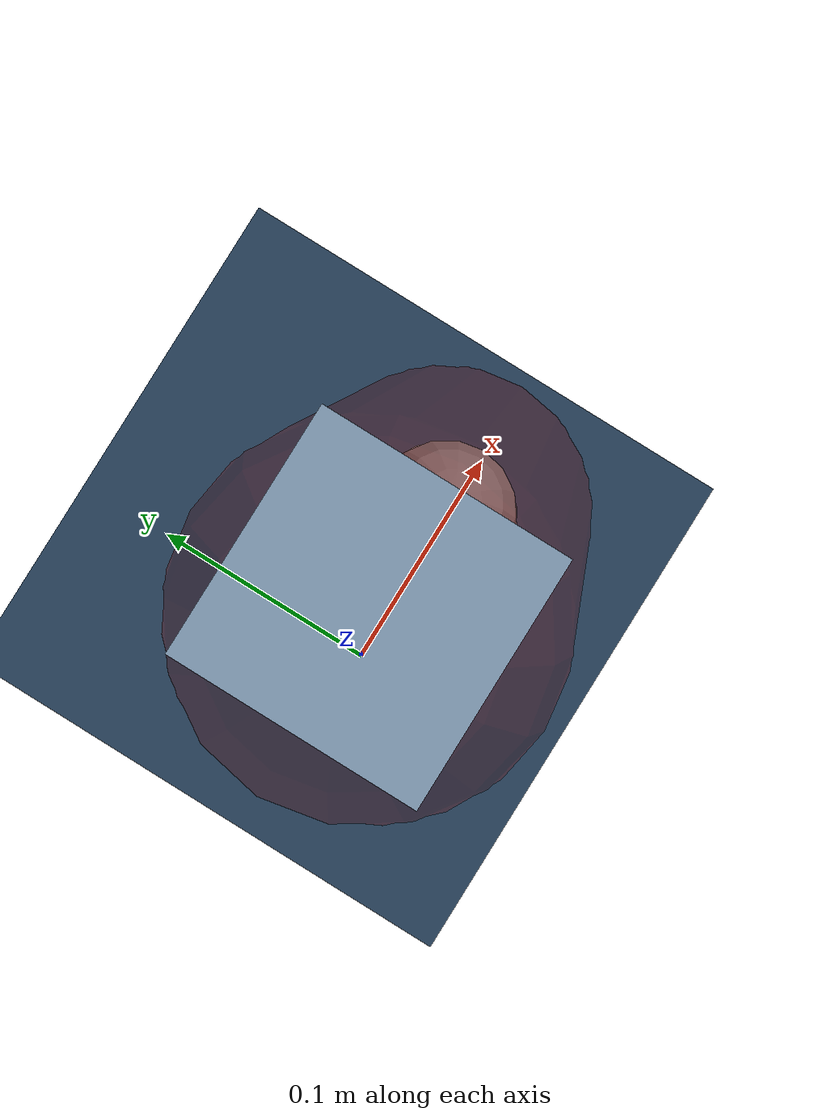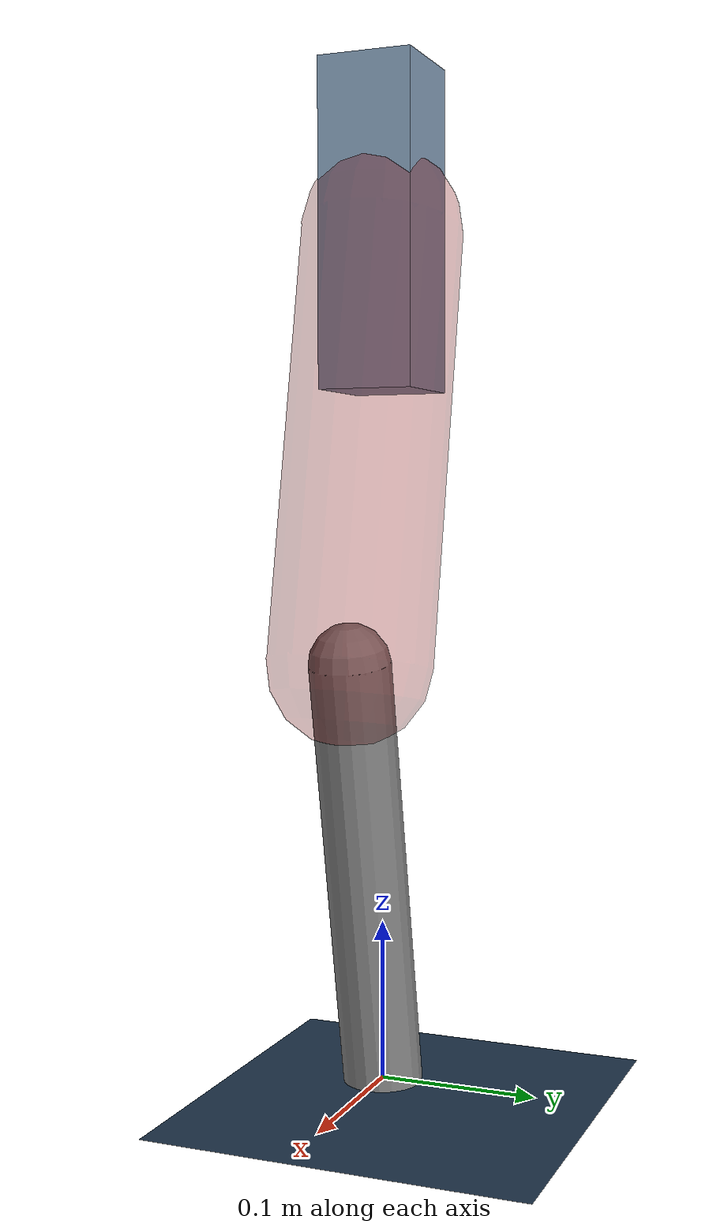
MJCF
<mujoco model="Hopper2D">
	<compiler inertiafromgeom="true" angle="radian" />
	<option timestep="0.001" integrator="implicit" cone="elliptic" solver="Newton" tolerance="1e-10" />

	<default>
		<geom contype="1" conaffinity="1" condim="3" friction="2 0.005 0.0001" solref="0.005 1" />
		<joint limited="true" damping="0.1" />
	</default>

	<asset>
		<texture name="skybox" type="skybox" builtin="gradient" rgb1=".4 .6 .8" rgb2="0 0 0" width="800" height="800" />
		<texture name="grid" type="2d" builtin="checker" rgb1=".1 .2 .3" rgb2=".2 .3 .4" width="300" height="300" mark="edge" markrgb=".2 .3 .4" />
		<material name="ground" texture="grid" texrepeat="1 1" texuniform="true" reflectance="0.1" />
		<material name="leg" rgba="0.5 0.6 0.7 1" />
	</asset>

	<worldbody>

		<geom name="floor" type="plane" size="5 5 0.25" material="ground" />

		<light directional="false" diffuse="0.8 0.8 0.8" specular="0.3 0.3 0.3" pos="0 0 2" dir="0 0 -1" />
		<light mode="targetbodycom" target="base" directional="false" diffuse="0.8 0.8 0.8" specular="0.3 0.3 0.3" pos="0 0 2" dir="0 0 -1" />

		<camera name="fixed" pos="0 -2 1" xyaxes="1 0 0 0 0 1" />
		<camera name="tracking" mode="trackcom" pos="0 -3 1" />

		<body name="root" pos="0 0 0.5331329799699376">
			<joint name="slide_x" type="slide" axis="1 0 0" range="-100 100" />
			<joint name="slide_z" type="slide" axis="0 0 1" range="0 10" />

			<body name="base" pos="0 0 0">
				<geom name="torso" type="box" size="0.03 0.03 0.1" mass="2.315" material="leg" />

				<body name="link1" pos="0 0 0" euler="0 1.377629251512389 0">
					<joint type="hinge" axis="0 -1 0" pos="0 0 0" name="hinge1" limited="true" range="-3.14 3.14" stiffness="0" damping="0.1" />
					<geom name="thigh" type="capsule" fromto="0 0 0 0.2702061672303179 0 0" size="0.05" rgba="0.5 0 0 0.3" mass="0.9092360347988264" />

					<body name="link2" pos="0.2702061672303179 0 0" euler="0 0.384384640193363 0">
						<joint type="hinge" axis="0 -1 0" pos="0 0 0" name="hinge2" limited="true" range="-3.14 3.14" stiffness="0" damping="0.1" />
						<geom name="shank" type="capsule" fromto="0 0 0 0.2729268127396197 0 0" size="0.025" mass="0.46134145019169576" />

					</body>
				</body>
			</body>
		</body>
	</worldbody>

	<actuator>
		<motor name="torque1" joint="hinge1" ctrlrange="-91.30511033678145 91.30511033678145" ctrllimited="true" gear="1" />
		<motor name="torque2" joint="hinge2" ctrlrange="-105.71608908053891 105.71608908053891" ctrllimited="true" gear="1" />
	</actuator>
</mujoco>
